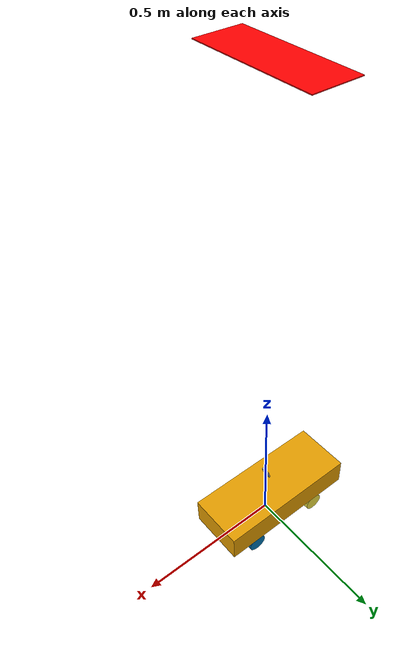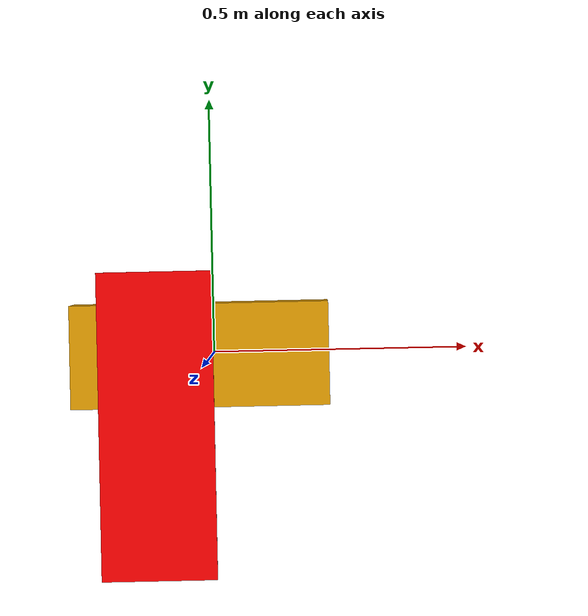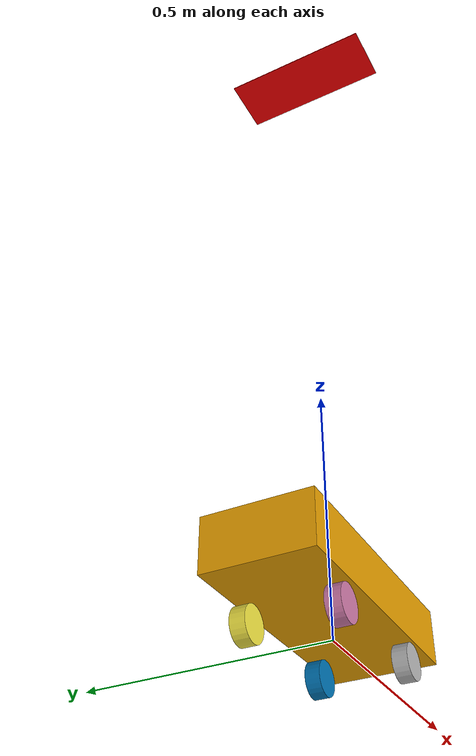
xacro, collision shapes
<?xml version="1.0" ?>
<robot name="automobile" xmlns:xacro="http://ros.org/wiki/xacro">

  <xacro:include filename="$(find models_pkg)/wheel_left/model.urdf.xacro"/>
  <xacro:include filename="$(find models_pkg)/wheel_right/model.urdf.xacro"/>
  <xacro:include filename="$(find models_pkg)/steering_column/model.urdf.xacro"/>

  <!-- Default link -->
  <link name="base_footprint">
  </link>

  <joint
    name="base_footprint_joint" type="fixed">
    <parent link="base_link" />
    <child link="base_footprint" />
    <origin xyz="0.0 0.0 0.0" rpy="0 0 0" />
  </joint>

  <gazebo reference="base_footprint_joint">
    <disableFixedJointLumping>true</disableFixedJointLumping>
    <preserveFixedJoint>true</preserveFixedJoint>
  </gazebo>

  <!-- Chassis link -->

  <link name='base_link'>
      <inertial>
        <mass value="0.26244"/>
        <inertia ixx="0.002" ixy="0.0" ixz="0.0" iyy="0.002" iyz="0.0" izz="0.002"/>
      </inertial>
      <visual>
        <origin rpy="0 0 0" xyz="0 0 0"/>
        <geometry>
          <mesh filename="package://models_pkg/chassis/meshes/chassisV5.dae"/>
        </geometry>
        <material name="chassis">
          <color rgba="1.0 0.0 0.0 1.0" />
        </material>
      </visual>
      <collision>
        <origin rpy="0 0 0" xyz="0 0 1.5709"/>
        <geometry>
          <box size="0.135 0.36 0.002"/>
        </geometry>

        <surface>
          <friction>
            <ode>
              <mu>1</mu>
              <mu2>1</mu2>
              <fdir1>0 0 0</fdir1>
              <slip1>0</slip1>
              <slip2>0</slip2>
            </ode>
            <torsional>
              <coefficient>1</coefficient>
              <patch_radius>0</patch_radius>
              <surface_radius>0</surface_radius>
              <use_patch_radius>1</use_patch_radius>
              <ode>
                <slip>0</slip>
              </ode>
            </torsional>
          </friction>
          <bounce>
            <restitution_coefficient>0</restitution_coefficient>
            <threshold>1e+06</threshold>
          </bounce>
          <contact>
            <collide_without_contact>0</collide_without_contact>
            <collide_without_contact_bitmask>1</collide_without_contact_bitmask>
            <collide_bitmask>1</collide_bitmask>
            <ode>
              <soft_cfm>0</soft_cfm>
              <soft_erp>0.2</soft_erp>
              <kp>1e+6</kp>
              <kd>1</kd>
              <max_vel>0.01</max_vel>
              <min_depth>0</min_depth>
            </ode>
          </contact>
        </surface>
      </collision>
    </link>

  <!-- Left Wheel links and joints -->

  <xacro:steering_column prefix="steer_left" x="0.112" y="0.0725" z="-0.0165" z_joint="0.005" />
  <xacro:wheel_left prefix="wheel_rear_left" x="-0.152" y="0.081" z="-0.0165" parent="base_link" />
  <xacro:wheel_left prefix="wheel_front_left" x="0.118" y="0.081" z="-0.0165" parent="steer_left_link" />

  <!-- Right Wheel links and joints-->

  <xacro:steering_column prefix="steer_right" x="0.112" y="-0.0725" z="-0.0165" z_joint="0.005" />
  <xacro:wheel_right prefix="wheel_rear_right" x="-0.152" y="-0.081" z="-0.0165" parent="base_link" />
  <xacro:wheel_right prefix="wheel_front_right" x="0.118" y="-0.081" z="-0.0165" parent="steer_right_link" />

  <!-- Car body link and joint -->

  <link name='car_body_link'>
    <inertial>
        <mass value="1"/>
        <inertia ixx="0.166667" ixy="0.0" ixz="0.0" iyy="0.166667" iyz="0.0" izz="0.166667"/>
    </inertial>
    <visual name='visual'>
      <origin rpy="0 0 0" xyz="-0.024 0 -0.028"/>
      <geometry>
        <mesh filename="package://models_pkg/car_body/meshes/CarBody.dae"/>
      </geometry>
    </visual>
    <collision >
      <origin xyz="-0.024 0 0.07" rpy="0 0 1.5709"/>
      <geometry>
        <box size="0.2 0.5 0.1"/>
      </geometry>
    </collision>

  </link>

  <joint name='car_body_joint' type='fixed'>
    <parent link="base_link" />
    <child link="car_body_link" />
    <origin xyz="0.0 0.0 0.0" rpy="0 0 0" />
    <dynamics damping="0" friction="0" />
  </joint>

  <gazebo reference="car_body_joint">
    <disableFixedJointLumping>true</disableFixedJointLumping>
    <preserveFixedJoint>true</preserveFixedJoint>
  </gazebo>

  <!-- Camera link and joint -->

  <link name="camera_link">
    <inertial>
        <mass value="0.0052875"/>
        <inertia ixx="4.1e-07" ixy="0.0" ixz="0.0" iyy="7.9e-07" iyz="0.0" izz="4.1e-07"/>
    </inertial>
    <visual>
      <origin xyz="0 0 0.2" rpy="0 0.2617 0" />
      <geometry>
        <box size="0.005 0.03 0.03" />
      </geometry>
      <material name="Grey">
        <color rgba="0.7 0.7 0.7 1.0"/>
      </material>
    </visual>
    <collision>
        <origin xyz="0 0 0.2" rpy="0 0.2617 0" />
        <geometry>
          <box size="0.005 0.03 0.03"/>
        </geometry>
    </collision>

  </link>

  <joint name="camera_joint" type="fixed">
    <parent link="base_link" />
    <child link="camera_link" />
    <origin xyz="0 0 0" rpy="0 0 0" />
    <dynamics damping="0" friction="0" />

  </joint>

  <gazebo reference="camera_joint">
    <disableFixedJointLumping>true</disableFixedJointLumping>
    <preserveFixedJoint>true</preserveFixedJoint>
  </gazebo>

  <!-- Gazebo plugins -->

  <!-- Camera Plugin -->

  <gazebo reference="camera_link">
    <sensor type="camera" name="camera1">
      <pose>0 0 0.2 0 0.2617 0</pose>
      <always_on>true</always_on>
      <update_rate>30.0</update_rate>
      <visualize>true</visualize>
      <camera>
        <horizontal_fov>1.085594795</horizontal_fov>
        <image>
          <width>640</width>
          <height>480</height>
          <format>R8G8B8</format>
        </image>
        <clip>
          <near>0.02</near>
          <far>100</far>
        </clip>
        <noise>
          <type>gaussian</type>
          <mean>0.0</mean>
          <stddev>0.0</stddev>
        </noise>
      </camera>
      <plugin name="camera_controller" filename="libgazebo_ros_camera.so">
        <baseline>0.2</baseline>
        <alwaysOn>true</alwaysOn>
        <updateRate>30.0</updateRate>
        <imageTopicName>image_raw</imageTopicName>
        <cameraInfoTopicName>camera_info</cameraInfoTopicName>
        <frameName>camera_link</frameName>
        <hackBaseline>0.0</hackBaseline>
        <distortionK1>0.0</distortionK1>
        <distortionK2>0.0</distortionK2>
        <distortionK3>0.0</distortionK3>
        <distortionT1>0.0</distortionT1>
        <distortionT2>0.0</distortionT2>
        <robotNamespace>/</robotNamespace>
      </plugin>
    </sensor>

  </gazebo>

  <!-- Car-like robot Plugin -->

  <gazebo>
    <plugin name="CarLikeRobotPlugin" filename="libcar_plugin.so">
      <wheelbase>0.26</wheelbase>
      <axletrack>0.162</axletrack>
      <wheelradius>0.0325</wheelradius>

      <speed_wheel_joints>
        <front_wheel_joints>
          <leftjoint>wheel_front_left_joint</leftjoint>
          <rightjoint>wheel_front_right_joint</rightjoint>
        </front_wheel_joints>
        <rear_wheel_joints>
          <leftjoint>wheel_rear_left_joint</leftjoint>
          <rightjoint>wheel_rear_right_joint</rightjoint>
        </rear_wheel_joints>
        <kp>0.01</kp>
        <ki>0.0</ki>
        <kd>0.0</kd>
      </speed_wheel_joints>

      <steer_wheel_joints>
        <leftjoint>steer_left_joint</leftjoint>
        <rightjoint>steer_right_joint</rightjoint>
        <kp>10</kp>
        <ki>0.0</ki>
        <kd>0.1</kd>
      </steer_wheel_joints>

      <initial_steer>0.0</initial_steer>
      <initial_speed>0.0</initial_speed>
      <robotNamespace>/</robotNamespace>
    </plugin>
  </gazebo>

  <!-- BNO055 IMU Plugin  -->

  <gazebo>
    <plugin name="bno055" filename="libbno055_plugin.so"/>
  </gazebo>

  <!-- GPS Plugin -->

  <gazebo>
    <plugin name="gps" filename="libgps_plugin.so"/>
  </gazebo>

</robot>

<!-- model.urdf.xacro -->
<robot xmlns:xacro="http://ros.org/wiki/xacro">
    <xacro:macro name="wheel_left" params="prefix x y z parent">
        <link name="${prefix}_link">
            <inertial>
                <mass value="0.1"/>
                <inertia ixx="0.00003" ixy="0.0" ixz="0.0" iyy="0.00003" iyz="0.0"  izz="0.00003"/>
            </inertial>

            <visual>
                <origin rpy="0 0 0" xyz="0 0 0"/>
                <geometry>
                    <mesh filename="package://models_pkg/wheel_left/meshes/rim.dae"/>
                </geometry>
            </visual>

            <collision>
                <origin xyz="0 0 0" rpy="1.5709 0 0" />
                <geometry>
                    <cylinder radius="0.0325" length="0.028" />
                </geometry>

                <surface>
                    <friction>
                        <ode>
                            <mu>0.7</mu>
                            <mu2>0.7</mu2>
                            <fdir1>0 0 0</fdir1>
                            <slip1>0</slip1>
                            <slip2>0</slip2>
                        </ode>
                    </friction>
                    <bounce>
                        <restitution_coefficient>0</restitution_coefficient>
                        <threshold>1e+06</threshold>
                    </bounce>
                    <contact>
                        <collide_without_contact>0</collide_without_contact>
                        <collide_without_contact_bitmask>1</collide_without_contact_bitmask>
                        <collide_bitmask>1</collide_bitmask>
                        <ode>
                        <soft_cfm>0</soft_cfm>
                        <soft_erp>0.2</soft_erp>
                        <kp>1e+05</kp>
                        <kd>10</kd>
                        <max_vel>0.01</max_vel>
                        <min_depth>0</min_depth>
                        </ode>
                    </contact>
                </surface>
            </collision>
        </link>

        <!-- Connect the wheels to the base_link at the appropriate location, and
            define a continuous joint to allow the wheels to freely rotate about
            an axis -->
        <joint name="${prefix}_joint" type="continuous">
            <parent link="${parent}" />
            <child link="${prefix}_link" />
            <origin xyz="${x} ${y} ${z}" rpy="0 0 0" />

            <axis xyz="0 1 0"/>
            <limit effort="10" velocity="100" />
            <dynamics damping="0.01" friction="0.01"/>
        </joint>
    </xacro:macro>
</robot>

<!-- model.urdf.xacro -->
<robot xmlns:xacro="http://ros.org/wiki/xacro">
    <xacro:macro name="wheel_right" params="prefix x y z parent">
        <link name="${prefix}_link">
            <inertial>
                <mass value="0.1"/>
                <inertia ixx="0.00003" ixy="0.0" ixz="0.0" iyy="0.00003" iyz="0.0"  izz="0.00003"/>
            </inertial>
            <visual>
                <origin rpy="0 0 0" xyz="0 0 0"/>
                <geometry>
                    <mesh filename="package://models_pkg/wheel_right/meshes/rim.dae"/>
                </geometry>
            </visual>

            <collision>
                <origin xyz="0 0 0" rpy="1.5709 0 0" />
                <geometry>
                    <cylinder radius="0.0325" length="0.028" />
                </geometry>
                <surface>
                    <friction>
                        <ode>
                        <mu>0.7</mu>
                        <mu2>0.7</mu2>
                        <fdir1>0 0 0</fdir1>
                        <slip1>0</slip1>
                        <slip2>0</slip2>
                        </ode>
                    </friction>
                    <bounce>
                        <restitution_coefficient>0</restitution_coefficient>
                        <threshold>1e+06</threshold>
                    </bounce>
                    <contact>
                        <collide_without_contact>0</collide_without_contact>
                        <collide_without_contact_bitmask>1</collide_without_contact_bitmask>
                        <collide_bitmask>1</collide_bitmask>
                        <ode>
                        <soft_cfm>0</soft_cfm>
                        <soft_erp>0.2</soft_erp>
                        <kp>1e+05</kp>
                        <kd>10</kd>
                        <max_vel>0.01</max_vel>
                        <min_depth>0</min_depth>
                        </ode>
                    </contact>
                    </surface>
            </collision>
        </link>

        <!-- Connect the wheels to the base_link at the appropriate location, and
            define a continuous joint to allow the wheels to freely rotate about
            an axis -->
        <joint name="${prefix}_joint" type="continuous">
            <parent link="${parent}" />
            <child link="${prefix}_link" />
            <!-- change sign of yaw if fornt and rear are not right -->
            <origin xyz="${x} ${y} ${z}" rpy="0 -0 0" />

            <axis xyz="0 1 0"/>
            <limit effort="10" velocity="100" />
            <dynamics damping="0.01" friction="0.01"/>
        </joint>
    </xacro:macro>
</robot>

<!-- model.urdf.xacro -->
<robot xmlns:xacro="http://www.ros.org/wiki/xacro">
    <xacro:macro name="steering_column" params="prefix x y z z_joint">
        <link name="${prefix}_link">
            <inertial>
                <mass value="0.05"/>
                <inertia ixx="1e-5" ixy="0.0" ixz="0.0"  iyy="1e-5" iyz="0.0" izz="1e-5"/>
            </inertial>
            <visual>
                <origin rpy="0 0 0" xyz="${x} ${y} ${z}"/>
                <geometry>
                    <cylinder radius="0.001" length="0.01" />
                </geometry>
            </visual>

            <collision>
                <origin xyz="0 0 0" rpy="0 0 0" />
                <geometry>
                    <cylinder radius="0.001" length="0.01" />
                </geometry>
                <surface>
                    <friction>
                        <ode>
                        <mu>1</mu>
                        <mu2>1</mu2>
                        <fdir1>0 0 0</fdir1>
                        <slip1>0</slip1>
                        <slip2>0</slip2>
                        </ode>
                        <torsional>
                        <coefficient>1</coefficient>
                        <patch_radius>0</patch_radius>
                        <surface_radius>0</surface_radius>
                        <use_patch_radius>1</use_patch_radius>
                        <ode>
                            <slip>0</slip>
                        </ode>
                        </torsional>
                    </friction>
                    <bounce>
                        <restitution_coefficient>0</restitution_coefficient>
                        <threshold>1e+06</threshold>
                    </bounce>
                    <contact>
                        <collide_without_contact>0</collide_without_contact>
                        <collide_without_contact_bitmask>1</collide_without_contact_bitmask>
                        <collide_bitmask>1</collide_bitmask>
                        <ode>
                        <soft_cfm>0</soft_cfm>
                        <soft_erp>0.2</soft_erp>
                        <kp>1e+6</kp>
                        <kd>1</kd>
                        <max_vel>0.01</max_vel>
                        <min_depth>0</min_depth>
                        </ode>
                        <bullet>
                        <split_impulse>1</split_impulse>
                        <split_impulse_penetration_threshold>-0.01</split_impulse_penetration_threshold>
                        <soft_cfm>0</soft_cfm>
                        <soft_erp>0.2</soft_erp>
                        <kp>1e+6</kp>
                        <kd>1</kd>
                        </bullet>
                    </contact>
                    </surface>
            </collision>
        </link>

        <!-- Connect the wheels to the base_link at the appropriate location, and
            define a continuous joint to allow the wheels to freely rotate about
            an axis -->
        <joint name="${prefix}_joint" type="revolute">
            <parent link="base_link" />
            <child link="${prefix}_link" />
            <origin xyz="0 0 ${z_joint}" rpy="0 -0 0" />

            <axis xyz="0 0 1"/>
             <!-- reasonable limits: ±30° -->
            <limit lower="-0.6" upper="0.6" effort="10" velocity="5"/>

            <!-- some damping -->
            <dynamics damping="1.0" friction="0.1"/>
        </joint>
    </xacro:macro>
</robot>
